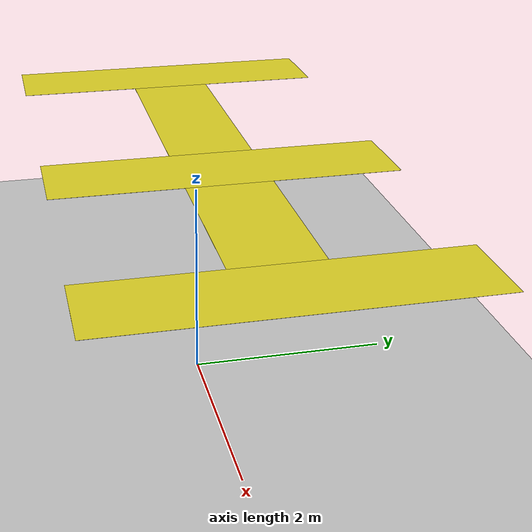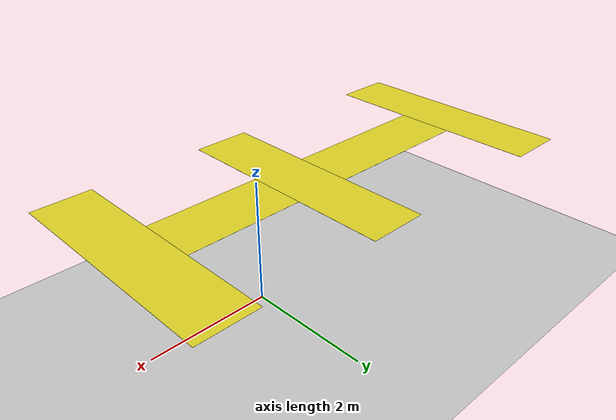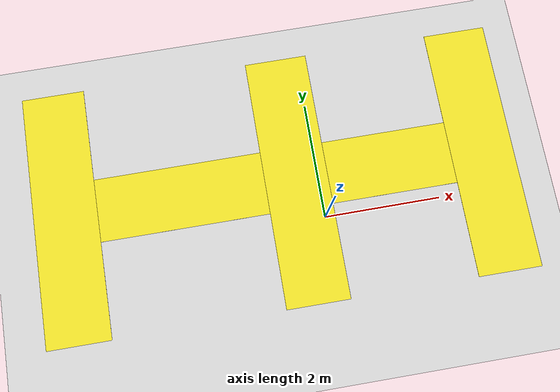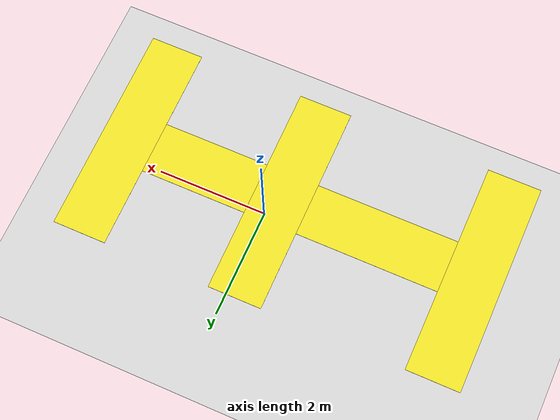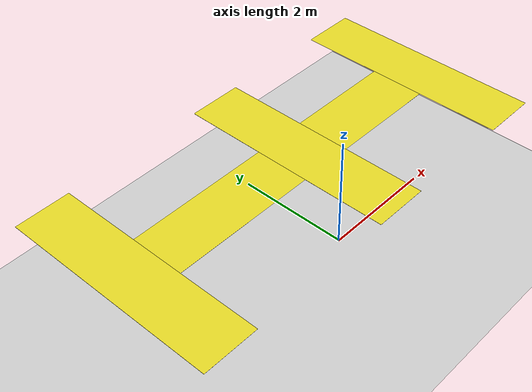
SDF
<sdf version='1.7'>
  <world name='levitation_world'>
    <light name='sun' type='directional'>
      <cast_shadows>1</cast_shadows>
      <pose>0 0 10 0 0 0</pose>
      <diffuse>0.8 0.8 0.8 1</diffuse>
      <specular>0.2 0.2 0.2 1</specular>
      <attenuation>
        <range>1000</range>
        <constant>0.9</constant>
        <linear>0.01</linear>
        <quadratic>0.001</quadratic>
      </attenuation>
      <direction>-0.5 0.1 -0.9</direction>
    </light>

    <gravity>0 0 -9.81</gravity>
    <magnetic_field>6e-06 2.3e-05 -4.2e-05</magnetic_field>
    <atmosphere type='adiabatic'/>

    <physics type='ode'>
      <max_step_size>0.001</max_step_size>
      <real_time_factor>1.0</real_time_factor>
      <real_time_update_rate>1000</real_time_update_rate>
    </physics>

    <scene>
      <ambient>0.4 0.4 0.4 1</ambient>
      <background>0.7 0.7 0.7 1</background>
      <shadows>1</shadows>
    </scene>

    <model name='ground_plane'>
      <static>true</static>
      <link name='link'>
        <collision name='collision'>
          <geometry>
            <plane>
              <normal>0 0 1</normal>
              <size>100 100</size>
            </plane>
          </geometry>
        </collision>
        <visual name='visual'>
          <cast_shadows>false</cast_shadows>
          <geometry>
            <plane>
              <normal>0 0 1</normal>
              <size>100 100</size>
            </plane>
          </geometry>
          <material>
            <script>
              <uri>file://media/materials/scripts/gazebo.material</uri>
              <name>Gazebo/Grey</name>
            </script>
          </material>
        </visual>
      </link>
    </model>

    <model name='copper_plate'>
      <static>true</static>
      <pose>-0.510715 0.350583 2.0 0 0 0</pose>
      <link name='plate_link'>
        <collision name='main_plate_left'>
          <pose>-3.3 0 0 0 0 0</pose>
          <geometry>
            <box>
              <size>0.9 3.6 0.0015</size>
            </box>
          </geometry>
        </collision>
        <visual name='main_plate_left'>
          <pose>-3.3 0 0 0 0 0</pose>
          <geometry>
            <box>
              <size>0.9 3.6 0.0015</size>
            </box>
          </geometry>
          <material>
            <script>
              <name>Gazebo/Yellow</name>
              <uri>file://media/materials/scripts/gazebo.material</uri>
            </script>
          </material>
        </visual>
    <visual name='test_apriltag_0'>
	  <!-- Copper plate alt yüzeyinin biraz altına koyuyoruz -->
	  <pose>0 0 -0.01 3.14159 0 0</pose>

	  <geometry>
	    <plane>
	      <normal>0 0 1</normal>
	      <size>0.007 0.007</size>
	    </plane>
	  </geometry>

	  <material>
	    <script>
	      <uri>file://media/materials/scripts/apriltag.material</uri>
	      <uri>file://media/materials/textures</uri>
	      <name>AprilTag/Test0</name>
	    </script>
	  </material>
	</visual>
        <collision name='main_plate_center'>
          <pose>0 0 0 0 0 0</pose>
          <geometry>
            <box>
              <size>0.9 3.6 0.0015</size>
            </box>
          </geometry>
        </collision>
        <visual name='main_plate_center'>
          <pose>0 0 0 0 0 0</pose>
          <geometry>
            <box>
              <size>0.9 3.6 0.0015</size>
            </box>
          </geometry>
          <material>
            <script>
              <name>Gazebo/Yellow</name>
              <uri>file://media/materials/scripts/gazebo.material</uri>
            </script>
          </material>
        </visual>
        <collision name='main_plate_right'>
          <pose>2.7 0 0 0 0 0</pose>
          <geometry>
            <box>
              <size>0.9 3.6 0.0015</size>
            </box>
          </geometry>
        </collision>
        <visual name='main_plate_right'>
          <pose>2.7 0 0 0 0 0</pose>
          <geometry>
            <box>
              <size>0.9 3.6 0.0015</size>
            </box>
          </geometry>
          <material>
            <script>
              <name>Gazebo/Yellow</name>
              <uri>file://media/materials/scripts/gazebo.material</uri>
            </script>
          </material>
        </visual>
        <collision name='connector_left_center'>
          <pose>-1.65 0 0 0 0 0</pose>
          <geometry>
            <box>
              <size>2.4 0.9 0.0015</size>
            </box>
          </geometry>
        </collision>
        <visual name='connector_left_center'>
          <pose>-1.65 0 0 0 0 0</pose>
          <geometry>
            <box>
              <size>2.4 0.9 0.0015</size>
            </box>
          </geometry>
          <material>
            <script>
              <name>Gazebo/Yellow</name>
              <uri>file://media/materials/scripts/gazebo.material</uri>
            </script>
          </material>
        </visual>
        <collision name='connector_center_right'>
          <pose>1.35 0 0 0 0 0</pose>
          <geometry>
            <box>
              <size>1.8 0.9 0.0015</size>
            </box>
          </geometry>
        </collision>
        <visual name='connector_center_right'>
          <pose>1.35 0 0 0 0 0</pose>
          <geometry>
            <box>
              <size>1.8 0.9 0.0015</size>
            </box>
          </geometry>
          <material>
            <script>
              <name>Gazebo/Yellow</name>
              <uri>file://media/materials/scripts/gazebo.material</uri>
            </script>
          </material>
        </visual>
      </link>
    </model>

    <gui fullscreen='0'>
      <camera name='user_camera'>
        <pose>1.45 8.80 13.90 0 0.792 -1.6508</pose>
        <view_controller>orbit</view_controller>
        <projection_type>perspective</projection_type>
      </camera>
    </gui>
  </world>
</sdf>
